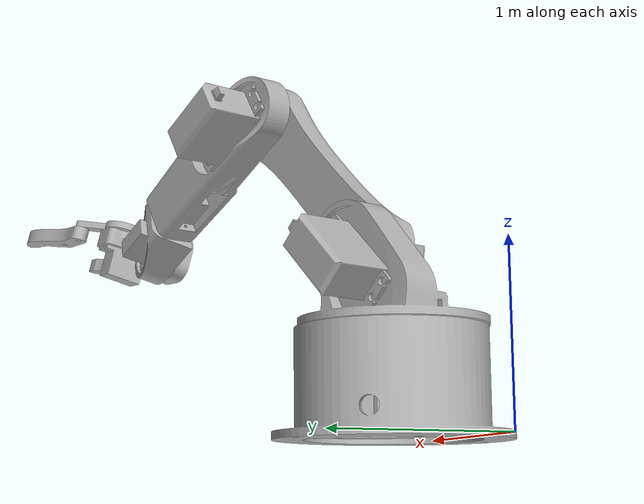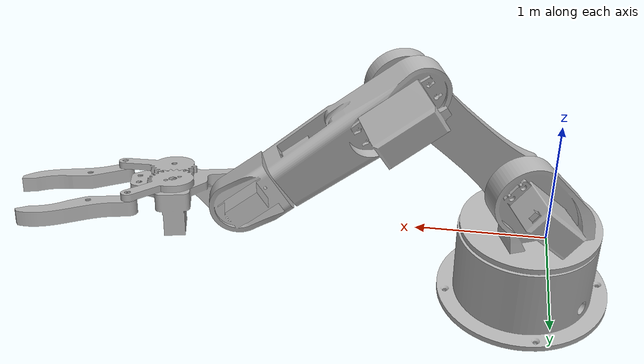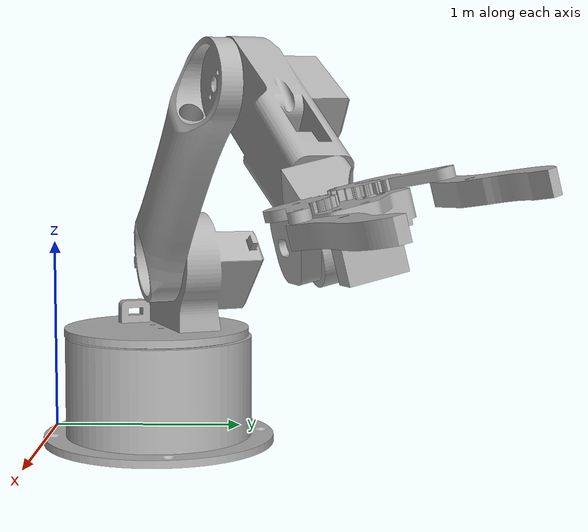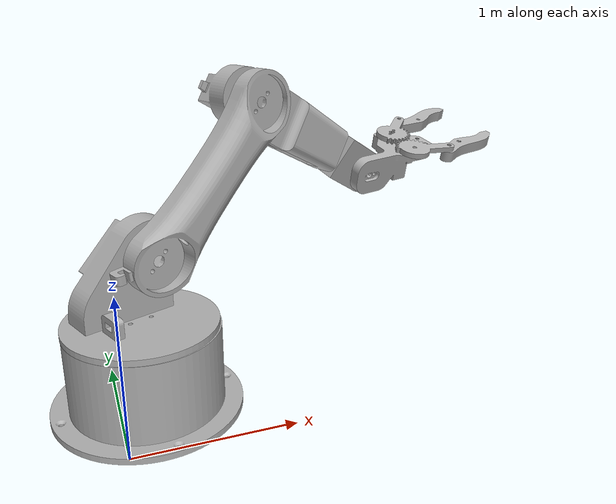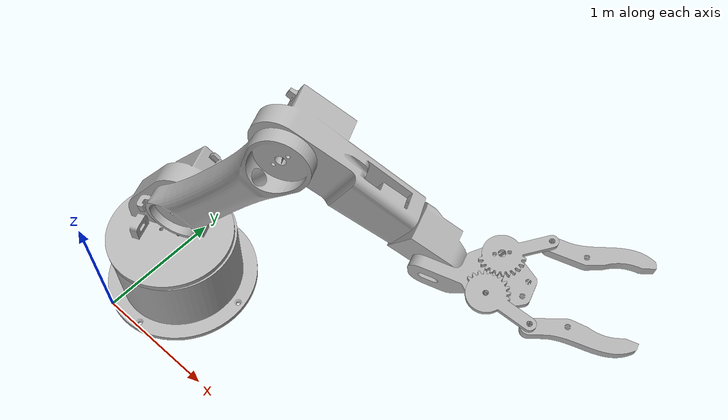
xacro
<?xml version="1.0" ?>
<robot name="robotic_arm_ml" xmlns:xacro="http://www.ros.org/wiki/xacro">

<xacro:include filename="$(find robotic_arm_ml_description)/urdf/materials.xacro" />
<xacro:include filename="$(find robotic_arm_ml_description)/urdf/robotic_arm_ml.trans" />
<xacro:include filename="$(find robotic_arm_ml_description)/urdf/robotic_arm_ml.gazebo" />
<link name="base_link">
  <inertial>
    <origin xyz="0.26494575724145875 0.5112241468344755 0.2556334699866963" rpy="0 0 0"/>
    <mass value="48.24266647917062"/>
    <inertia ixx="0.994376" iyy="1.201917" izz="0.857059" ixy="0.244477" iyz="-0.021919" ixz="0.033108"/>
  </inertial>
  <visual>
    <origin xyz="0 0 0" rpy="0 0 0"/>
    <geometry>
      <mesh filename="package://robotic_arm_ml_description/meshes/base_link.stl" scale="0.001 0.001 0.001"/>
    </geometry>
    <material name="silver"/>
  </visual>
  <collision>
    <origin xyz="0 0 0" rpy="0 0 0"/>
    <geometry>
      <mesh filename="package://robotic_arm_ml_description/meshes/base_link.stl" scale="0.001 0.001 0.001"/>
    </geometry>
  </collision>
</link>

<link name="Waist_1_1_1">
  <inertial>
    <origin xyz="-0.024565581704929895 0.1447832784660097 0.22567631658809195" rpy="0 0 0"/>
    <mass value="120.85408661023656"/>
    <inertia ixx="8.718078" iyy="8.088328" izz="8.985416" ixy="-0.271187" iyz="-1.943235" ixz="-0.499562"/>
  </inertial>
  <visual>
    <origin xyz="-0.183453 -0.565156 -0.526" rpy="0 0 0"/>
    <geometry>
      <mesh filename="package://robotic_arm_ml_description/meshes/Waist_1_1_1.stl" scale="0.001 0.001 0.001"/>
    </geometry>
    <material name="silver"/>
  </visual>
  <collision>
    <origin xyz="-0.183453 -0.565156 -0.526" rpy="0 0 0"/>
    <geometry>
      <mesh filename="package://robotic_arm_ml_description/meshes/Waist_1_1_1.stl" scale="0.001 0.001 0.001"/>
    </geometry>
  </collision>
</link>

<link name="base_middle_arm_1">
  <inertial>
    <origin xyz="0.40246560309467133 0.08187113034220594 0.4250686648477223" rpy="0 0 0"/>
    <mass value="91.94705403253768"/>
    <inertia ixx="9.899902" iyy="15.32459" izz="8.276447" ixy="-2.705761" iyz="-2.75879" ixz="-6.656611"/>
  </inertial>
  <visual>
    <origin xyz="-0.300699 -0.646813 -0.927348" rpy="0 0 0"/>
    <geometry>
      <mesh filename="package://robotic_arm_ml_description/meshes/base_middle_arm_1.stl" scale="0.001 0.001 0.001"/>
    </geometry>
    <material name="silver"/>
  </visual>
  <collision>
    <origin xyz="-0.300699 -0.646813 -0.927348" rpy="0 0 0"/>
    <geometry>
      <mesh filename="package://robotic_arm_ml_description/meshes/base_middle_arm_1.stl" scale="0.001 0.001 0.001"/>
    </geometry>
  </collision>
</link>

<link name="middleArm_1_1_1">
  <inertial>
    <origin xyz="0.18660217665283785 0.2510999535270809 -0.1566854735511416" rpy="0 0 0"/>
    <mass value="128.89539075986352"/>
    <inertia ixx="6.106852" iyy="13.581027" izz="11.605685" ixy="-1.655493" iyz="1.107081" ixz="4.944107"/>
  </inertial>
  <visual>
    <origin xyz="-1.066203 -0.962098 -1.796025" rpy="0 0 0"/>
    <geometry>
      <mesh filename="package://robotic_arm_ml_description/meshes/middleArm_1_1_1.stl" scale="0.001 0.001 0.001"/>
    </geometry>
    <material name="silver"/>
  </visual>
  <collision>
    <origin xyz="-1.066203 -0.962098 -1.796025" rpy="0 0 0"/>
    <geometry>
      <mesh filename="package://robotic_arm_ml_description/meshes/middleArm_1_1_1.stl" scale="0.001 0.001 0.001"/>
    </geometry>
  </collision>
</link>

<link name="miniGrip1_1_1_1">
  <inertial>
    <origin xyz="0.19048555631205333 0.031018855670965184 -0.0633085747365163" rpy="0 0 0"/>
    <mass value="33.61876172140893"/>
    <inertia ixx="0.541752" iyy="0.797556" izz="0.63983" ixy="-0.041096" iyz="0.034024" ixz="0.111115"/>
  </inertial>
  <visual>
    <origin xyz="-1.733156 -1.345584 -1.287229" rpy="0 0 0"/>
    <geometry>
      <mesh filename="package://robotic_arm_ml_description/meshes/miniGrip1_1_1_1.stl" scale="0.001 0.001 0.001"/>
    </geometry>
    <material name="silver"/>
  </visual>
  <collision>
    <origin xyz="-1.733156 -1.345584 -1.287229" rpy="0 0 0"/>
    <geometry>
      <mesh filename="package://robotic_arm_ml_description/meshes/miniGrip1_1_1_1.stl" scale="0.001 0.001 0.001"/>
    </geometry>
  </collision>
</link>

<link name="ServoGripMain_1_1_1">
  <inertial>
    <origin xyz="0.25963337198008585 0.10992120682895212 0.05630234992107641" rpy="0 0 0"/>
    <mass value="24.241737048934002"/>
    <inertia ixx="0.578632" iyy="0.838836" izz="1.060248" ixy="-0.300112" iyz="-0.069104" ixz="-0.150709"/>
  </inertial>
  <visual>
    <origin xyz="-2.024398 -1.28613 -1.157378" rpy="0 0 0"/>
    <geometry>
      <mesh filename="package://robotic_arm_ml_description/meshes/ServoGripMain_1_1_1.stl" scale="0.001 0.001 0.001"/>
    </geometry>
    <material name="silver"/>
  </visual>
  <collision>
    <origin xyz="-2.024398 -1.28613 -1.157378" rpy="0 0 0"/>
    <geometry>
      <mesh filename="package://robotic_arm_ml_description/meshes/ServoGripMain_1_1_1.stl" scale="0.001 0.001 0.001"/>
    </geometry>
  </collision>
</link>

<link name="gear2_1">
  <inertial>
    <origin xyz="0.05245047172393358 0.017489245072558113 0.023866764379942174" rpy="0 0 0"/>
    <mass value="20.19894966072849"/>
    <inertia ixx="0.130076" iyy="0.233485" izz="0.345835" ixy="-0.095367" iyz="-0.026943" ixz="-0.01914"/>
  </inertial>
  <visual>
    <origin xyz="-2.348703 -1.510794 -1.36249" rpy="0 0 0"/>
    <geometry>
      <mesh filename="package://robotic_arm_ml_description/meshes/gear2_1.stl" scale="0.001 0.001 0.001"/>
    </geometry>
    <material name="silver"/>
  </visual>
  <collision>
    <origin xyz="-2.348703 -1.510794 -1.36249" rpy="0 0 0"/>
    <geometry>
      <mesh filename="package://robotic_arm_ml_description/meshes/gear2_1.stl" scale="0.001 0.001 0.001"/>
    </geometry>
  </collision>
</link>

<link name="gear1_1">
  <inertial>
    <origin xyz="0.055965803200417774 0.0012460645258820513 0.019884393318024385" rpy="0 0 0"/>
    <mass value="20.74572403474325"/>
    <inertia ixx="0.070609" iyy="0.290152" izz="0.347769" ixy="0.006718" iyz="-0.014948" ixz="0.006587"/>
  </inertial>
  <visual>
    <origin xyz="-2.417925 -1.25883 -1.287838" rpy="0 0 0"/>
    <geometry>
      <mesh filename="package://robotic_arm_ml_description/meshes/gear1_1.stl" scale="0.001 0.001 0.001"/>
    </geometry>
    <material name="silver"/>
  </visual>
  <collision>
    <origin xyz="-2.417925 -1.25883 -1.287838" rpy="0 0 0"/>
    <geometry>
      <mesh filename="package://robotic_arm_ml_description/meshes/gear1_1.stl" scale="0.001 0.001 0.001"/>
    </geometry>
  </collision>
</link>

<link name="grip_l_1">
  <inertial>
    <origin xyz="0.2706683605482607 0.013063963451428906 -0.04532529976955657" rpy="0 0 0"/>
    <mass value="42.713523097289055"/>
    <inertia ixx="0.080906" iyy="1.329192" izz="1.356411" ixy="-0.108447" iyz="-0.004939" ixz="-0.003767"/>
  </inertial>
  <visual>
    <origin xyz="-2.615442 -1.658509 -1.393468" rpy="0 0 0"/>
    <geometry>
      <mesh filename="package://robotic_arm_ml_description/meshes/grip_l_1.stl" scale="0.001 0.001 0.001"/>
    </geometry>
    <material name="silver"/>
  </visual>
  <collision>
    <origin xyz="-2.615442 -1.658509 -1.393468" rpy="0 0 0"/>
    <geometry>
      <mesh filename="package://robotic_arm_ml_description/meshes/grip_l_1.stl" scale="0.001 0.001 0.001"/>
    </geometry>
  </collision>
</link>

<link name="grip_r_1">
  <inertial>
    <origin xyz="0.2399947809301035 0.13344999063086305 -0.015700363004030438" rpy="0 0 0"/>
    <mass value="42.712764988705295"/>
    <inertia ixx="0.269262" iyy="1.148423" izz="1.348817" ixy="-0.450721" iyz="-0.042607" ixz="-0.08978"/>
  </inertial>
  <visual>
    <origin xyz="-2.725721 -1.256628 -1.281895" rpy="0 0 0"/>
    <geometry>
      <mesh filename="package://robotic_arm_ml_description/meshes/grip_r_1.stl" scale="0.001 0.001 0.001"/>
    </geometry>
    <material name="silver"/>
  </visual>
  <collision>
    <origin xyz="-2.725721 -1.256628 -1.281895" rpy="0 0 0"/>
    <geometry>
      <mesh filename="package://robotic_arm_ml_description/meshes/grip_r_1.stl" scale="0.001 0.001 0.001"/>
    </geometry>
  </collision>
</link>

<link name="Base_1_1_1">
  <inertial>
    <origin xyz="-0.46702007999986483 0.5092585509027819 0.39758430195992317" rpy="0 0 0"/>
    <mass value="113.84818311476913"/>
    <inertia ixx="15.534832" iyy="15.919459" izz="24.616724" ixy="0.539873" iyz="0.267857" ixz="-0.379704"/>
  </inertial>
  <visual>
    <origin xyz="-0.656619 -0.066945 0.214602" rpy="0 0 0"/>
    <geometry>
      <mesh filename="package://robotic_arm_ml_description/meshes/Base_1_1_1.stl" scale="0.001 0.001 0.001"/>
    </geometry>
    <material name="silver"/>
  </visual>
  <collision>
    <origin xyz="-0.656619 -0.066945 0.214602" rpy="0 0 0"/>
    <geometry>
      <mesh filename="package://robotic_arm_ml_description/meshes/Base_1_1_1.stl" scale="0.001 0.001 0.001"/>
    </geometry>
  </collision>
</link>

<joint name="base_joint" type="continuous">
  <origin xyz="0.183453 0.565156 0.526" rpy="0 0 0"/>
  <parent link="base_link"/>
  <child link="Waist_1_1_1"/>
  <axis xyz="-0.0 0.0 1.0"/>
</joint>

<joint name="mid_joint_1" type="revolute">
  <origin xyz="0.117246 0.081657 0.401348" rpy="0 0 0"/>
  <parent link="Waist_1_1_1"/>
  <child link="base_middle_arm_1"/>
  <axis xyz="0.38083 -0.924645 0.0"/>
  <limit upper="2.617994" lower="-0.349066" effort="100" velocity="100"/>
</joint>

<joint name="mid_join_2" type="revolute">
  <origin xyz="0.765504 0.315285 0.868677" rpy="0 0 0"/>
  <parent link="base_middle_arm_1"/>
  <child link="middleArm_1_1_1"/>
  <axis xyz="-0.380831 0.924645 0.0"/>
  <limit upper="1.308997" lower="-3.228859" effort="100" velocity="100"/>
</joint>

<joint name="wrist_joint" type="continuous">
  <origin xyz="0.666953 0.383486 -0.508796" rpy="0 0 0"/>
  <parent link="middleArm_1_1_1"/>
  <child link="miniGrip1_1_1_1"/>
  <axis xyz="0.799015 0.329018 -0.503311"/>
</joint>

<joint name="hand_flip" type="revolute">
  <origin xyz="0.291242 -0.059454 -0.129851" rpy="0 0 0"/>
  <parent link="miniGrip1_1_1_1"/>
  <child link="ServoGripMain_1_1_1"/>
  <axis xyz="0.242022 -0.942125 -0.232006"/>
  <limit upper="1.22173" lower="-2.617994" effort="100" velocity="100"/>
</joint>

<joint name="claw_1" type="revolute">
  <origin xyz="0.324305 0.224664 0.205112" rpy="0 0 0"/>
  <parent link="ServoGripMain_1_1_1"/>
  <child link="gear2_1"/>
  <axis xyz="0.017083 -0.234654 0.971929"/>
  <limit upper="0.610865" lower="0.174533" effort="100" velocity="100"/>
</joint>

<joint name="claw_2" type="revolute">
  <origin xyz="0.393527 -0.0273 0.13046" rpy="0 0 0"/>
  <parent link="ServoGripMain_1_1_1"/>
  <child link="gear1_1"/>
  <axis xyz="0.017079 -0.234941 0.97186"/>
  <limit upper="0.890118" lower="0.0" effort="100" velocity="100"/>
</joint>

<joint name="claw_3" type="continuous">
  <origin xyz="0.266739 0.147715 0.030978" rpy="0 0 0"/>
  <parent link="gear2_1"/>
  <child link="grip_l_1"/>
  <axis xyz="-0.017057 0.234634 -0.971934"/>
</joint>

<joint name="claw_4" type="continuous">
  <origin xyz="0.307796 -0.002202 -0.005943" rpy="0 0 0"/>
  <parent link="gear1_1"/>
  <child link="grip_r_1"/>
  <axis xyz="-0.017114 0.23491 -0.971867"/>
</joint>

<joint name="baseto_base_link" type="fixed">
  <origin xyz="0.656619 0.066945 -0.214602" rpy="0 0 0"/>
  <parent link="base_link"/>
  <child link="Base_1_1_1"/>
</joint>

</robot>

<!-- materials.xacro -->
<robot name="robotic_arm_ml" xmlns:xacro="http://www.ros.org/wiki/xacro" >

<material name="silver">
  <color rgba="0.700 0.700 0.700 1.000"/>
</material>

</robot>

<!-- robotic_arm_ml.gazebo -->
<robot name="robotic_arm_ml" xmlns:xacro="http://www.ros.org/wiki/xacro" >

<xacro:property name="body_color" value="Gazebo/Silver" />

<gazebo>
  <plugin name="control" filename="libgazebo_ros_control.so"/>
</gazebo>
<gazebo reference="base_link">
  <material>${body_color}</material>
  <mu1>0.2</mu1>
  <mu2>0.2</mu2>
  <selfCollide>true</selfCollide>
  <gravity>true</gravity>
</gazebo>

<gazebo reference="Waist_1_1_1">
  <material>${body_color}</material>
  <mu1>0.2</mu1>
  <mu2>0.2</mu2>
  <selfCollide>true</selfCollide>
</gazebo>

<gazebo reference="base_middle_arm_1">
  <material>${body_color}</material>
  <mu1>0.2</mu1>
  <mu2>0.2</mu2>
  <selfCollide>true</selfCollide>
</gazebo>

<gazebo reference="middleArm_1_1_1">
  <material>${body_color}</material>
  <mu1>0.2</mu1>
  <mu2>0.2</mu2>
  <selfCollide>true</selfCollide>
</gazebo>

<gazebo reference="miniGrip1_1_1_1">
  <material>${body_color}</material>
  <mu1>0.2</mu1>
  <mu2>0.2</mu2>
  <selfCollide>true</selfCollide>
</gazebo>

<gazebo reference="ServoGripMain_1_1_1">
  <material>${body_color}</material>
  <mu1>0.2</mu1>
  <mu2>0.2</mu2>
  <selfCollide>true</selfCollide>
</gazebo>

<gazebo reference="gear2_1">
  <material>${body_color}</material>
  <mu1>0.2</mu1>
  <mu2>0.2</mu2>
  <selfCollide>true</selfCollide>
</gazebo>

<gazebo reference="gear1_1">
  <material>${body_color}</material>
  <mu1>0.2</mu1>
  <mu2>0.2</mu2>
  <selfCollide>true</selfCollide>
</gazebo>

<gazebo reference="grip_l_1">
  <material>${body_color}</material>
  <mu1>0.2</mu1>
  <mu2>0.2</mu2>
  <selfCollide>true</selfCollide>
</gazebo>

<gazebo reference="grip_r_1">
  <material>${body_color}</material>
  <mu1>0.2</mu1>
  <mu2>0.2</mu2>
  <selfCollide>true</selfCollide>
</gazebo>

<gazebo reference="Base_1_1_1">
  <material>${body_color}</material>
  <mu1>0.2</mu1>
  <mu2>0.2</mu2>
  <selfCollide>true</selfCollide>
</gazebo>

</robot>
